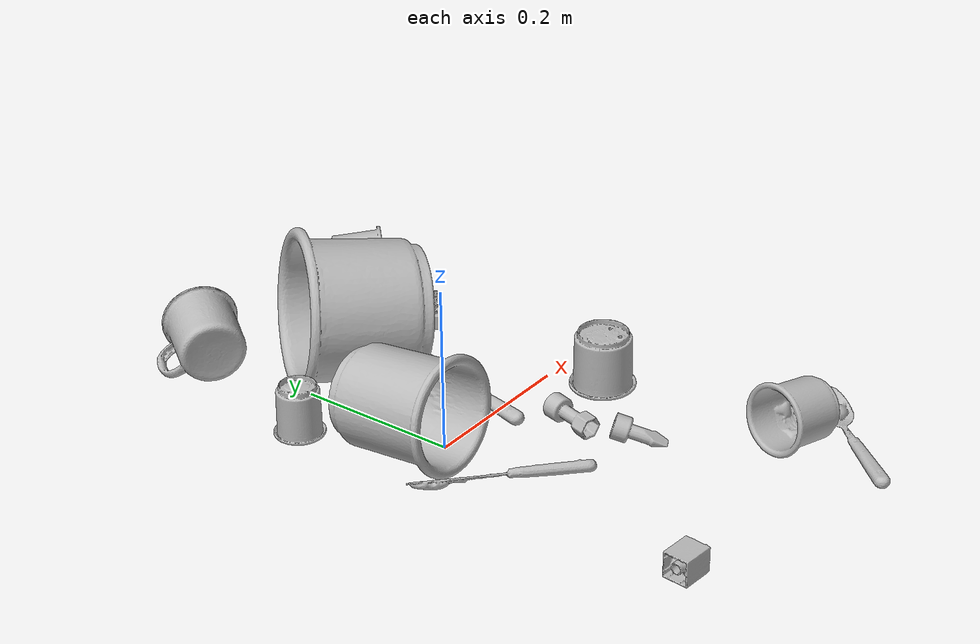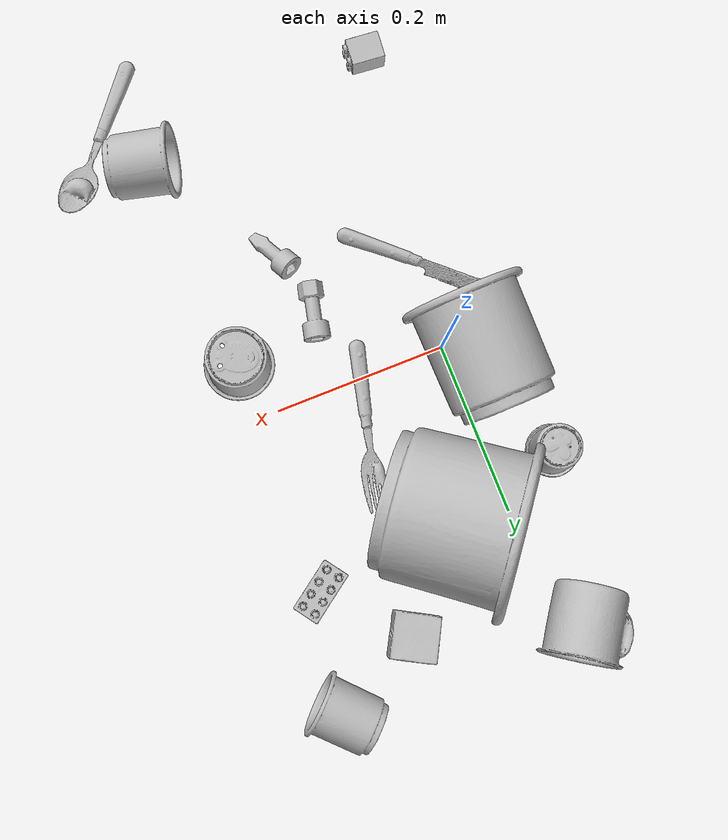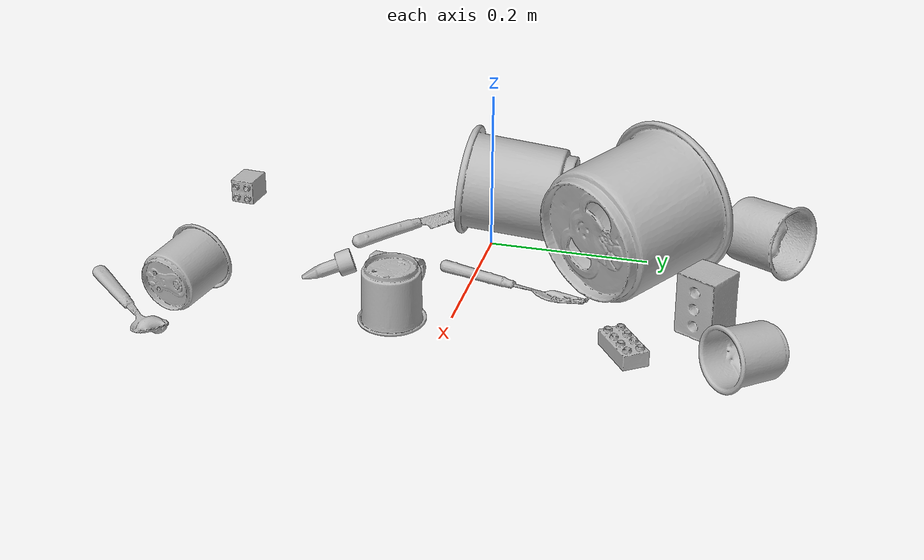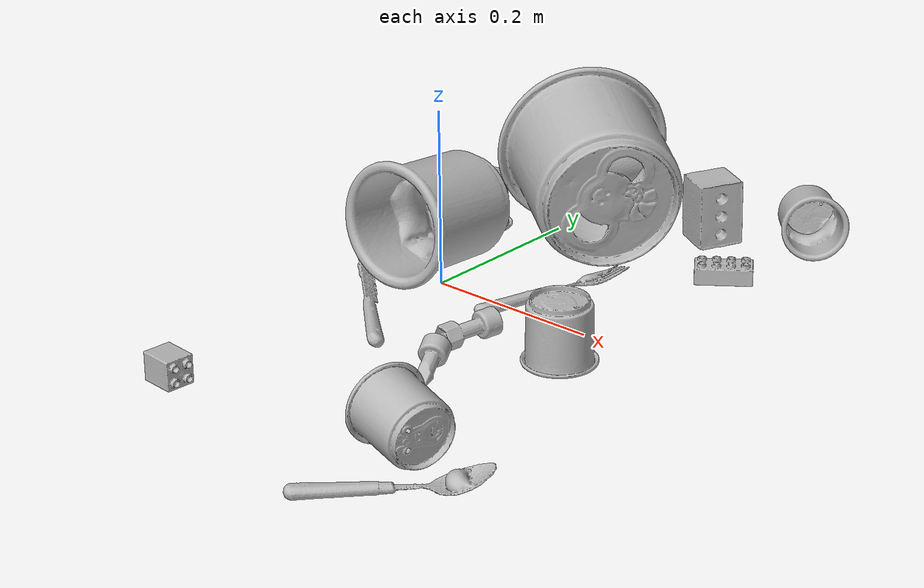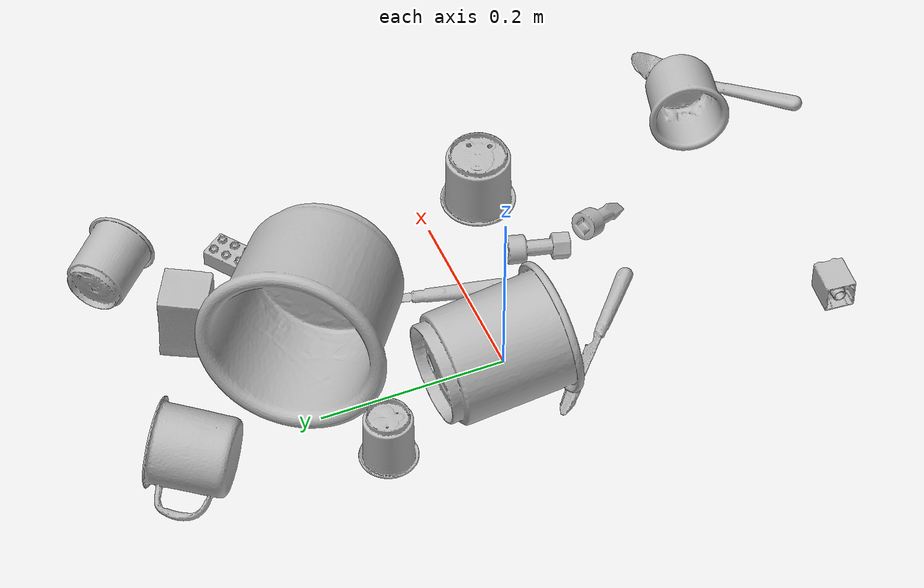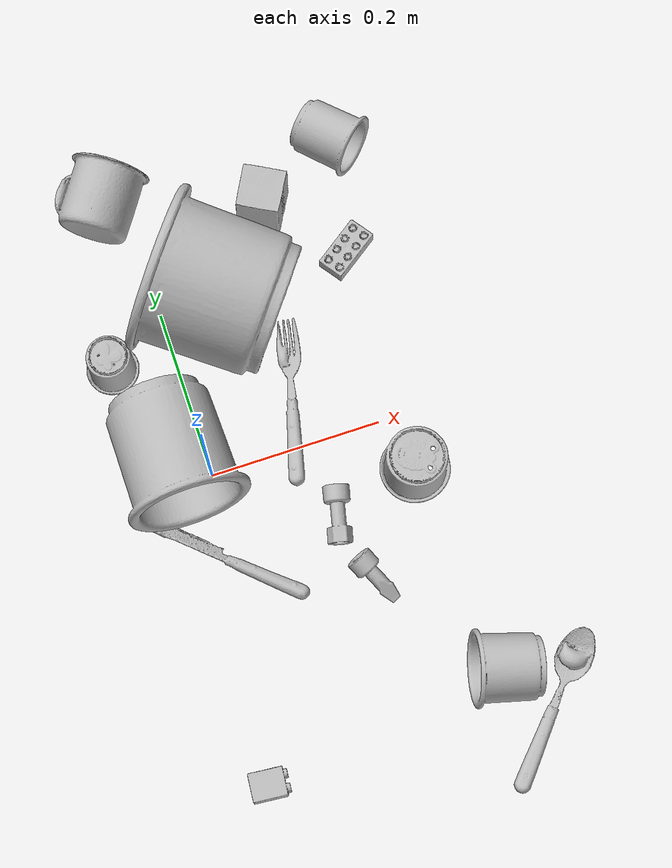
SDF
<sdf version="1.4">
  <world name="default">
    <light name="light1" type="point">
      <pose>0 0 1 0 0 0</pose>
      <diffuse>3 3 3 1</diffuse>
      <specular>3 3 3 1</specular>
    </light>
    <light name="light2" type="point">
      <pose>0 0.5 2 0 0 0</pose>
      <diffuse>1 1 1 1</diffuse>
      <specular>1 1 1 1</specular>
    </light>
    <light name="light3" type="point">
      <pose>0 0.5 2 0 0 0</pose>
      <diffuse>3 3 3 1</diffuse>
      <specular>3 3 3 1</specular>
    </light>
    <scene>
      <ambient>0.7 0.7 0.7</ambient>
    </scene>
    <model name="cup1">
      <link name="link_cup1">
        <collision name="default">
          <geometry>
            <mesh>
              <uri>model://e_cups/collision_meshes/collision.obj</uri>
              <scale>1.0 1.0 1.0</scale>
            </mesh>
          </geometry>
          <surface>
            <friction>
              <ode>
                <mu>0.5</mu>
                <mu2>0.5</mu2>
              </ode>
            </friction>
          <contact>
        <ode>
            <max_vel>0</max_vel>
            <min_depth>0.0001</min_depth>
            <kp>1e8</kp>
        </ode>
    </contact></surface>
        </collision>
        <visual name="default">
          <geometry>
            <mesh>
              <uri>model://e_cups/visual_meshes/visual.dae</uri>
              <scale>1.0 1.0 1.0</scale>
            </mesh>
          </geometry>
        </visual>
        <inertial>
          <mass>0.07679437845945358</mass>
          <pose>0.001135574304498732 0.002879783743992448 -0.0038829718250781298 0.6952411595659588 0.08767733322521654 -0.5235244631248706</pose>
          <inertia>
            <ixx>6.771342e-05</ixx>
            <iyy>7.077022e-05</iyy>
            <izz>6.4741864e-05</izz>
            <ixy>0</ixy>
            <ixz>0</ixz>
            <iyz>0</iyz>
          </inertia>
        </inertial>
      </link>
      <pose>0.2504099905490875 0.33959701657295227 0.03488115966320038 -1.478331562010755 0.44814997931057254 -2.3393543551011</pose>
    </model>
    <model name="silverware1">
      <link name="link_silverware1">
        <collision name="default">
          <geometry>
            <mesh>
              <uri>model://spoon/collision_meshes/collision.obj</uri>
              <scale>1.0 1.0 1.0</scale>
            </mesh>
          </geometry>
          <surface>
            <friction>
              <ode>
                <mu>0.5</mu>
                <mu2>0.5</mu2>
              </ode>
            </friction>
          <contact>
        <ode>
            <max_vel>0</max_vel>
            <min_depth>0.0001</min_depth>
            <kp>1e8</kp>
        </ode>
    </contact></surface>
        </collision>
        <visual name="default">
          <geometry>
            <mesh>
              <uri>model://spoon/visual_meshes/visual.dae</uri>
              <scale>1.0 1.0 1.0</scale>
            </mesh>
          </geometry>
        </visual>
        <inertial>
          <mass>0.015083584003150463</mass>
          <pose>-0.005526313092559576 -0.001603418029844761 -0.000727165665011853 0.035216710638299134 -0.03906584880684835 0.006150613179751253</pose>
          <inertia>
            <ixx>8.389734e-07</ixx>
            <iyy>5.739254e-05</iyy>
            <izz>5.7806283e-05</izz>
            <ixy>0</ixy>
            <ixz>0</ixz>
            <iyz>0</iyz>
          </inertia>
        </inertial>
      </link>
      <pose>0.27652040123939514 -0.37093883752822876 0.008385258726775646 0.006731722380453699 0.026892988198318087 0.84096181928952</pose>
    </model>
    <model name="cup2">
      <link name="link_cup2">
        <collision name="default">
          <geometry>
            <mesh>
              <uri>model://g_cups/collision_meshes/collision.obj</uri>
              <scale>1.0 1.0 1.0</scale>
            </mesh>
          </geometry>
          <surface>
            <friction>
              <ode>
                <mu>0.5</mu>
                <mu2>0.5</mu2>
              </ode>
            </friction>
          <contact>
        <ode>
            <max_vel>0</max_vel>
            <min_depth>0.0001</min_depth>
            <kp>1e8</kp>
        </ode>
    </contact></surface>
        </collision>
        <visual name="default">
          <geometry>
            <mesh>
              <uri>model://g_cups/visual_meshes/visual.dae</uri>
              <scale>1.0 1.0 1.0</scale>
            </mesh>
          </geometry>
        </visual>
        <inertial>
          <mass>0.04187431186437607</mass>
          <pose>-0.0007946277037262917 -4.2064348235726357e-05 -0.0021329382434487343 -0.21382305588888167 -0.31410659578681893 0.31120215507532384</pose>
          <inertia>
            <ixx>4.8876722e-05</ixx>
            <iyy>4.871046e-05</iyy>
            <izz>5.0627856e-05</izz>
            <ixy>0</ixy>
            <ixz>0</ixz>
            <iyz>0</iyz>
          </inertia>
        </inertial>
      </link>
      <pose>0.241487056016922 -0.3152385950088501 0.040048904716968536 0.9816876301861458 -1.3829210562476253 -1.2523831768589542</pose>
    </model>
    <model name="silverware2">
      <link name="link_silverware2">
        <collision name="default">
          <geometry>
            <mesh>
              <uri>model://fork/collision_meshes/collision.obj</uri>
              <scale>1.0 1.0 1.0</scale>
            </mesh>
          </geometry>
          <surface>
            <friction>
              <ode>
                <mu>0.5</mu>
                <mu2>0.5</mu2>
              </ode>
            </friction>
          <contact>
        <ode>
            <max_vel>0</max_vel>
            <min_depth>0.0001</min_depth>
            <kp>1e8</kp>
        </ode>
    </contact></surface>
        </collision>
        <visual name="default">
          <geometry>
            <mesh>
              <uri>model://fork/visual_meshes/visual.dae</uri>
              <scale>1.0 1.0 1.0</scale>
            </mesh>
          </geometry>
        </visual>
        <inertial>
          <mass>0.025364622473716736</mass>
          <pose>-0.029570050537586212 0.00046588227269239724 0.00032188615296036005 -0.013551666838441594 -0.010977837199147297 0.014453899745261501</pose>
          <inertia>
            <ixx>8.8917335e-07</ixx>
            <iyy>6.621973e-05</iyy>
            <izz>6.661743e-05</izz>
            <ixy>0</ixy>
            <ixz>0</ixz>
            <iyz>0</iyz>
          </inertia>
        </inertial>
      </link>
      <pose>0.11286620795726776 0.052306585013866425 0.005723233334720135 -0.18382188855778483 0.024649130958330448 1.3142165115530364</pose>
    </model>
    <model name="cup3">
      <link name="link_cup3">
        <collision name="default">
          <geometry>
            <mesh>
              <uri>model://f_cups/collision_meshes/collision.obj</uri>
              <scale>1.0 1.0 1.0</scale>
            </mesh>
          </geometry>
          <surface>
            <friction>
              <ode>
                <mu>0.5</mu>
                <mu2>0.5</mu2>
              </ode>
            </friction>
          <contact>
        <ode>
            <max_vel>0</max_vel>
            <min_depth>0.0001</min_depth>
            <kp>1e8</kp>
        </ode>
    </contact></surface>
        </collision>
        <visual name="default">
          <geometry>
            <mesh>
              <uri>model://f_cups/visual_meshes/visual.dae</uri>
              <scale>1.0 1.0 1.0</scale>
            </mesh>
          </geometry>
        </visual>
        <inertial>
          <mass>0.08338716626167297</mass>
          <pose>-0.0031714679207652807 -0.0006240069633349776 -0.003655536798760295 0.7862348245142414 -0.2607950949044878 -0.18237232658982702</pose>
          <inertia>
            <ixx>7.838616e-05</ixx>
            <iyy>8.222797e-05</iyy>
            <izz>8.560161e-05</izz>
            <ixy>0</ixy>
            <ixz>0</ixz>
            <iyz>0</iyz>
          </inertia>
        </inertial>
      </link>
      <pose>0.22196030616760254 -0.0651799738407135 0.0363040417432785 -3.1415926005390626 -7.218344189449573e-08 -1.392427551981747</pose>
    </model>
    <model name="silverware3">
      <link name="link_silverware3">
        <collision name="default">
          <geometry>
            <mesh>
              <uri>model://knife/collision_meshes/collision.obj</uri>
              <scale>1.0 1.0 1.0</scale>
            </mesh>
          </geometry>
          <surface>
            <friction>
              <ode>
                <mu>0.5</mu>
                <mu2>0.5</mu2>
              </ode>
            </friction>
          <contact>
        <ode>
            <max_vel>0</max_vel>
            <min_depth>0.0001</min_depth>
            <kp>1e8</kp>
        </ode>
    </contact></surface>
        </collision>
        <visual name="default">
          <geometry>
            <mesh>
              <uri>model://knife/visual_meshes/visual.dae</uri>
              <scale>1.0 1.0 1.0</scale>
            </mesh>
          </geometry>
        </visual>
        <inertial>
          <mass>0.015509607270359993</mass>
          <pose>-0.02378525398671627 0.0015275129117071629 5.0620248657651246e-05 0.07305981518176793 0.01724841487141605 -0.0074098192082968535</pose>
          <inertia>
            <ixx>4.4022548e-07</ixx>
            <iyy>5.95854e-05</iyy>
            <izz>5.9727172e-05</izz>
            <ixy>0</ixy>
            <ixz>0</ixz>
            <iyz>0</iyz>
          </inertia>
        </inertial>
      </link>
      <pose>-0.01738007552921772 -0.0935746431350708 0.008382429368793964 0.6101255204648561 -0.011902876465251712 2.3996086328253523</pose>
    </model>
    <model name="cup4">
      <link name="link_cup4">
        <collision name="default">
          <geometry>
            <mesh>
              <uri>model://d_cups/collision_meshes/collision.obj</uri>
              <scale>2.0 2.0 2.0</scale>
            </mesh>
          </geometry>
          <surface>
            <friction>
              <ode>
                <mu>0.5</mu>
                <mu2>0.5</mu2>
              </ode>
            </friction>
          <contact>
        <ode>
            <max_vel>0</max_vel>
            <min_depth>0.0001</min_depth>
            <kp>1e8</kp>
        </ode>
    </contact></surface>
        </collision>
        <visual name="default">
          <geometry>
            <mesh>
              <uri>model://d_cups/visual_meshes/visual.dae</uri>
              <scale>2.0 2.0 2.0</scale>
            </mesh>
          </geometry>
        </visual>
        <inertial>
          <mass>0.5481204390525818</mass>
          <pose>0.001613611588254571 0.0038234798703342676 -0.0045333015732467175 0.2401214667218237 -0.2470996070340832 0.5942599316130982</pose>
          <inertia>
            <ixx>0.001835623</ixx>
            <iyy>0.0018303102</iyy>
            <izz>0.0016615508</izz>
            <ixy>0</ixy>
            <ixz>0</ixz>
            <iyz>0</iyz>
          </inertia>
        </inertial>
      </link>
      <pose>-0.03483157604932785 0.026802171021699905 0.06540074199438095 -1.3305233581542766 -1.1832127111949677 2.9426039403646933</pose>
    </model>
    <model name="cup41">
      <link name="link_cup41">
        <collision name="default">
          <geometry>
            <mesh>
              <uri>model://b_cups/collision_meshes/collision.obj</uri>
              <scale>1.0 1.0 1.0</scale>
            </mesh>
          </geometry>
          <surface>
            <friction>
              <ode>
                <mu>0.5</mu>
                <mu2>0.5</mu2>
              </ode>
            </friction>
          <contact>
        <ode>
            <max_vel>0</max_vel>
            <min_depth>0.0001</min_depth>
            <kp>1e8</kp>
        </ode>
    </contact></surface>
        </collision>
        <visual name="default">
          <geometry>
            <mesh>
              <uri>model://b_cups/visual_meshes/visual.dae</uri>
              <scale>1.0 1.0 1.0</scale>
            </mesh>
          </geometry>
        </visual>
        <inertial>
          <mass>0.04462150111794472</mass>
          <pose>0.0005182005697861314 0.0018058601999655366 -0.0013381819007918239 0.11356336410280554 0.038725039404113405 -0.3456939711537357</pose>
          <inertia>
            <ixx>2.9207904e-05</ixx>
            <iyy>2.8653376e-05</iyy>
            <izz>2.45779e-05</izz>
            <ixy>0</ixy>
            <ixz>0</ixz>
            <iyz>0</iyz>
          </inertia>
        </inertial>
      </link>
      <pose>-0.07177610695362091 0.15510208904743195 0.03215540945529938 3.1415354856370437 5.2485759100243235e-06 1.4749362687233025</pose>
    </model>
    <model name="cup5">
      <link name="link_cup5">
        <collision name="default">
          <geometry>
            <mesh>
              <uri>model://i_cups/collision_meshes/collision.obj</uri>
              <scale>2.0 2.0 2.0</scale>
            </mesh>
          </geometry>
          <surface>
            <friction>
              <ode>
                <mu>0.5</mu>
                <mu2>0.5</mu2>
              </ode>
            </friction>
          <contact>
        <ode>
            <max_vel>0</max_vel>
            <min_depth>0.0001</min_depth>
            <kp>1e8</kp>
        </ode>
    </contact></surface>
        </collision>
        <visual name="default">
          <geometry>
            <mesh>
              <uri>model://i_cups/visual_meshes/visual.dae</uri>
              <scale>2.0 2.0 2.0</scale>
            </mesh>
          </geometry>
        </visual>
        <inertial>
          <mass>0.7183689475059509</mass>
          <pose>0.00022480347251985222 0.0003359461552463472 -0.0017158043337985873 -0.028983189607302198 -0.03987301698166741 -0.34590760218104494</pose>
          <inertia>
            <ixx>0.0039783698</ixx>
            <iyy>0.004013422</iyy>
            <izz>0.0044464725</izz>
            <ixy>0</ixy>
            <ixz>0</ixz>
            <iyz>0</iyz>
          </inertia>
        </inertial>
      </link>
      <pose>0.06821371614933014 0.18343360722064972 0.08993552625179291 1.0307162009932944 1.325736285800936 -2.7397874939311575</pose>
    </model>
    <model name="cup51">
      <link name="link_cup51">
        <collision name="default">
          <geometry>
            <mesh>
              <uri>model://mug/collision_meshes/collision.obj</uri>
              <scale>1.0 1.0 1.0</scale>
            </mesh>
          </geometry>
          <surface>
            <friction>
              <ode>
                <mu>0.5</mu>
                <mu2>0.5</mu2>
              </ode>
            </friction>
          <contact>
        <ode>
            <max_vel>0</max_vel>
            <min_depth>0.0001</min_depth>
            <kp>1e8</kp>
        </ode>
    </contact></surface>
        </collision>
        <visual name="default">
          <geometry>
            <mesh>
              <uri>model://mug/visual_meshes/visual.dae</uri>
              <scale>1.0 1.0 1.0</scale>
            </mesh>
          </geometry>
        </visual>
        <inertial>
          <mass>0.1239403635263443</mass>
          <pose>0.009571672417223454 0.0008143244776874781 -0.01094733364880085 -0.12983126758676797 0.08737752450174939 0.055073145905888306</pose>
          <inertia>
            <ixx>0.0001231125</ixx>
            <iyy>0.00013750937</iyy>
            <izz>0.00015903146</izz>
            <ixy>0</ixy>
            <ixz>0</ixz>
            <iyz>0</iyz>
          </inertia>
        </inertial>
      </link>
      <pose>-0.0335121676325798 0.3477588891983032 0.03762591630220413 -1.468182552972537 -0.6051387358479923 -0.6581708554933116</pose>
    </model>
    <model name="toy1">
      <link name="link_toy1">
        <collision name="default">
          <geometry>
            <mesh>
              <uri>model://e_toy_airplane/collision_meshes/collision.obj</uri>
              <scale>1.0 1.0 1.0</scale>
            </mesh>
          </geometry>
          <surface>
            <friction>
              <ode>
                <mu>0.5</mu>
                <mu2>0.5</mu2>
              </ode>
            </friction>
          <contact>
        <ode>
            <max_vel>0</max_vel>
            <min_depth>0.0001</min_depth>
            <kp>1e8</kp>
        </ode>
    </contact></surface>
        </collision>
        <visual name="default">
          <geometry>
            <mesh>
              <uri>model://e_toy_airplane/visual_meshes/visual.dae</uri>
              <scale>1.0 1.0 1.0</scale>
            </mesh>
          </geometry>
        </visual>
        <inertial>
          <mass>0.022831259295344353</mass>
          <pose>0.00011740475019905716 -2.2482799977296963e-05 -0.011187204159796238 0.005518483498250157 0.009228324176637706 0.15041338923558414</pose>
          <inertia>
            <ixx>6.9683606e-06</ixx>
            <iyy>6.897077e-06</iyy>
            <izz>2.0942666e-06</izz>
            <ixy>0</ixy>
            <ixz>0</ixz>
            <iyz>0</iyz>
          </inertia>
        </inertial>
      </link>
      <pose>0.14012359082698822 -0.17307975888252258 0.010301448404788971 -2.992693607090733 -1.2785065695239815 -1.2766674235100146</pose>
    </model>
    <model name="toy2">
      <link name="link_toy2">
        <collision name="default">
          <geometry>
            <mesh>
              <uri>model://c_toy_airplane/collision_meshes/collision.obj</uri>
              <scale>1.0 1.0 1.0</scale>
            </mesh>
          </geometry>
          <surface>
            <friction>
              <ode>
                <mu>0.5</mu>
                <mu2>0.5</mu2>
              </ode>
            </friction>
          <contact>
        <ode>
            <max_vel>0</max_vel>
            <min_depth>0.0001</min_depth>
            <kp>1e8</kp>
        </ode>
    </contact></surface>
        </collision>
        <visual name="default">
          <geometry>
            <mesh>
              <uri>model://c_toy_airplane/visual_meshes/visual.dae</uri>
              <scale>1.0 1.0 1.0</scale>
            </mesh>
          </geometry>
        </visual>
        <inertial>
          <mass>0.014964861795306206</mass>
          <pose>-0.00023024252732284367 -4.4292315237726143e-07 -0.006080531980842352 -0.006193085961310731 -0.016797608001683555 0.7655123908688324</pose>
          <inertia>
            <ixx>6.871557e-06</ixx>
            <iyy>6.852165e-06</iyy>
            <izz>1.6133057e-06</izz>
            <ixy>0</ixy>
            <ixz>0</ixz>
            <iyz>0</iyz>
          </inertia>
        </inertial>
      </link>
      <pose>0.12111063301563263 -0.09070320427417755 0.014615984633564949 1.641759968192094 0.7666121062865162 -0.17695113973747334</pose>
    </model>
    <model name="toy3">
      <link name="link_toy3">
        <collision name="default">
          <geometry>
            <mesh>
              <uri>model://c_lego_duplo/collision_meshes/collision.obj</uri>
              <scale>1.0 1.0 1.0</scale>
            </mesh>
          </geometry>
          <surface>
            <friction>
              <ode>
                <mu>0.5</mu>
                <mu2>0.5</mu2>
              </ode>
            </friction>
          <contact>
        <ode>
            <max_vel>0</max_vel>
            <min_depth>0.0001</min_depth>
            <kp>1e8</kp>
        </ode>
    </contact></surface>
        </collision>
        <visual name="default">
          <geometry>
            <mesh>
              <uri>model://c_lego_duplo/visual_meshes/visual.dae</uri>
              <scale>1.0 1.0 1.0</scale>
            </mesh>
          </geometry>
        </visual>
        <inertial>
          <mass>0.043811071664094925</mass>
          <pose>0.00031645968556404114 0.00019464633078314364 0.0010453150607645512 -0.011520790971684333 0.005900079198968262 0.031100329952374963</pose>
          <inertia>
            <ixx>1.685932e-05</ixx>
            <iyy>5.3854724e-06</iyy>
            <izz>1.970185e-05</izz>
            <ixy>0</ixy>
            <ixz>0</ixz>
            <iyz>0</iyz>
          </inertia>
        </inertial>
      </link>
      <pose>0.22899523377418518 0.20580433309078217 0.011981504037976265 0.008019349267752001 -0.002090342671705537 -0.9775111514514372</pose>
    </model>
    <model name="toy4">
      <link name="link_toy4">
        <collision name="default">
          <geometry>
            <mesh>
              <uri>model://foam_brick/collision_meshes/collision.obj</uri>
              <scale>1.0 1.0 1.0</scale>
            </mesh>
          </geometry>
          <surface>
            <friction>
              <ode>
                <mu>0.5</mu>
                <mu2>0.5</mu2>
              </ode>
            </friction>
          <contact>
        <ode>
            <max_vel>0</max_vel>
            <min_depth>0.0001</min_depth>
            <kp>1e8</kp>
        </ode>
    </contact></surface>
        </collision>
        <visual name="default">
          <geometry>
            <mesh>
              <uri>model://foam_brick/visual_meshes/visual.dae</uri>
              <scale>1.0 1.0 1.0</scale>
            </mesh>
          </geometry>
        </visual>
        <inertial>
          <mass>0.278400182723999</mass>
          <pose>-0.0002522472059354186 0.00034584358218126 -0.0002532101352699101 -0.2940175595239471 0.01727444673583901 -0.0007449899720057078</pose>
          <inertia>
            <ixx>0.00012161039</ixx>
            <iyy>0.00019415727</iyy>
            <izz>0.00019662478</izz>
            <ixy>0</ixy>
            <ixz>0</ixz>
            <iyz>0</iyz>
          </inertia>
        </inertial>
      </link>
      <pose>0.152911975979805 0.286769837141037 0.03830832615494728 2.011316746364931 1.5521827218330073 1.5047331160162623</pose>
    </model>
    <model name="toy5">
      <link name="link_toy5">
        <collision name="default">
          <geometry>
            <mesh>
              <uri>model://f_lego_duplo/collision_meshes/collision.obj</uri>
              <scale>1.0 1.0 1.0</scale>
            </mesh>
          </geometry>
          <surface>
            <friction>
              <ode>
                <mu>0.5</mu>
                <mu2>0.5</mu2>
              </ode>
            </friction>
          <contact>
        <ode>
            <max_vel>0</max_vel>
            <min_depth>0.0001</min_depth>
            <kp>1e8</kp>
        </ode>
    </contact></surface>
        </collision>
        <visual name="default">
          <geometry>
            <mesh>
              <uri>model://f_lego_duplo/visual_meshes/visual.dae</uri>
              <scale>1.0 1.0 1.0</scale>
            </mesh>
          </geometry>
        </visual>
        <inertial>
          <mass>0.033785246312618256</mass>
          <pose>2.369392132095527e-05 0.00013393175322562456 0.0018837875686585903 0.029838526741840128 -0.014425189077584645 -0.6756601169838921</pose>
          <inertia>
            <ixx>7.139008e-06</ixx>
            <iyy>7.202609e-06</iyy>
            <izz>6.1969613e-06</izz>
            <ixy>0</ixy>
            <ixz>0</ixz>
            <iyz>0</iyz>
          </inertia>
        </inertial>
      </link>
      <pose>-0.04449189826846123 -0.3527784049510956 0.016501981765031815 -1.5707922309976732 3.6214945356327634e-06 -1.6637149130370164</pose>
    </model>
  <physics type="ode">
      <max_contacts>50</max_contacts>
      <ode>
        <solver>
          <type>quick</type>
          <iters>75</iters>
        </solver>
        <constraints>
          <contact_max_correcting_vel>0</contact_max_correcting_vel>
          <contact_surface_layer>0</contact_surface_layer>
        </constraints>
      </ode>
    </physics></world>
</sdf>
